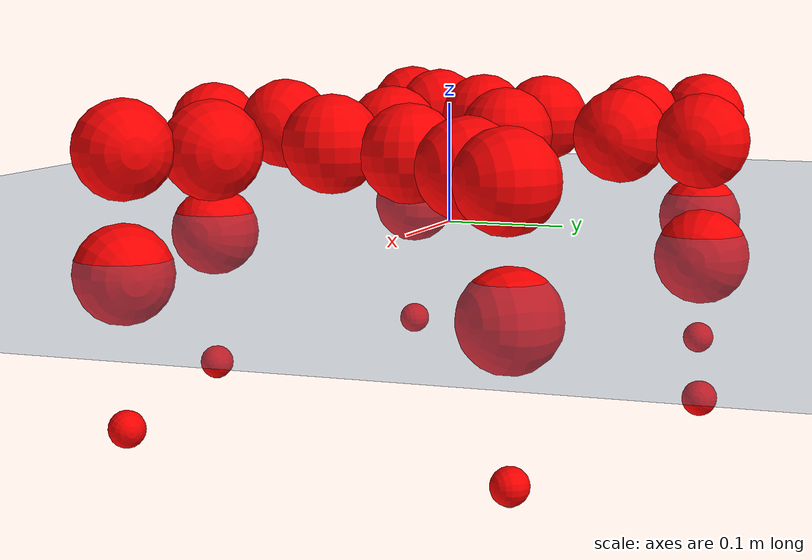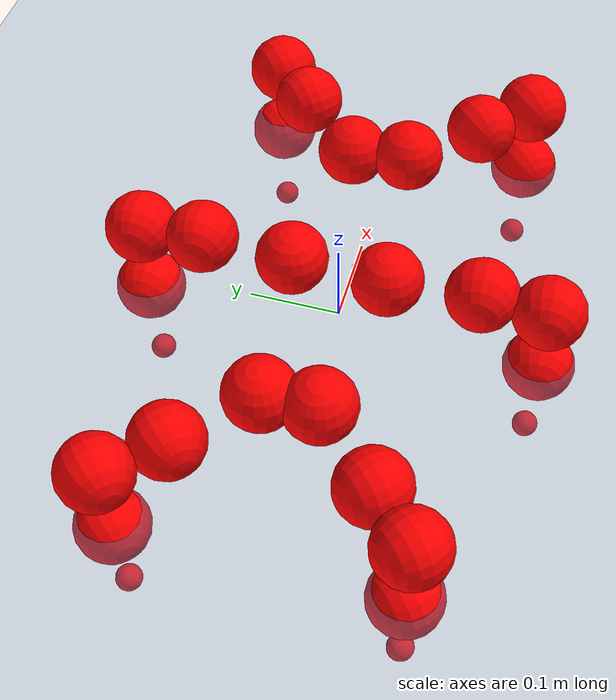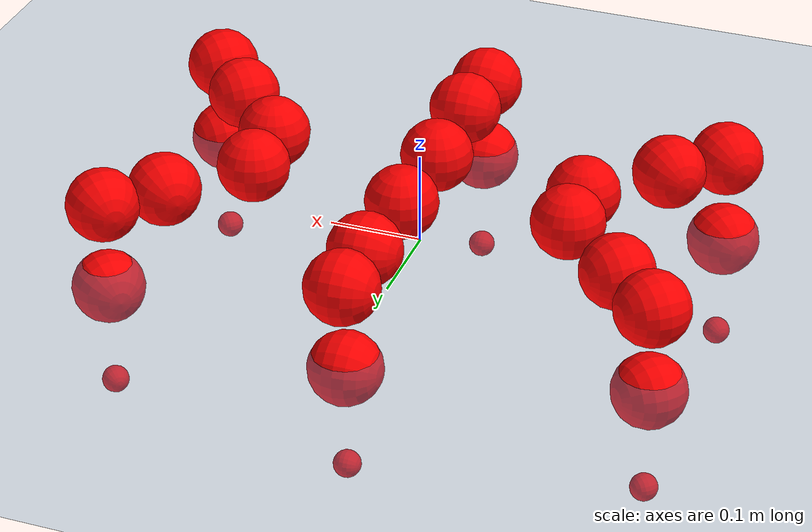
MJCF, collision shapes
<mujoco model="Golem">
  <compiler angle="radian" assetdir="assets" balanceinertia="true" inertiafromgeom="false"/>

  <option timestep="0.005" density="1.2" viscosity="2e-05"/>

  <size nkey="1"/>

  <visual>
    <quality shadowsize="8192"/>
    <map shadowclip="0.5"/>
  </visual>

  <default>
    <default class="/">
      <joint armature="0.01" damping="0.01" frictionloss="0.01"/>
      <geom contype="0" conaffinity="0" group="1" solref="-1000 -80"/>
      <site size="0.01 0.005 0.005" group="5"/>
      <general forcelimited="true" biastype="affine" gainprm="25" biasprm="0 -25 -0.5"/>
      <default class="visual">
        <geom type="mesh" group="2"/>
      </default>
      <default class="collision">
        <geom group="3"/>
      </default>
      <default class="foot">
        <geom size="0.01 0 0" condim="6" group="4" priority="1" solimp="0.015 1 0.01"/>
      </default>
      <default class="reward_collision_sphere">
        <geom group="5" rgba="1 0 0 1"/>
      </default>
    </default>
  </default>

  <asset>
    <texture type="skybox" colorspace="auto" name="//unnamed_texture_0" builtin="gradient" rgb1="0.95 0.95 0.95" rgb2="0.95 0.95 0.95" width="100" height="600"/>
    <texture type="2d" colorspace="auto" name="texplane" builtin="checker" rgb1="0.345 0.575 0.748" rgb2="0.345 0.575 0.748" markrgb="1 1 1" width="512" height="512"/>
    <material name="MatPlane" class="/" texture="texplane" texuniform="true" texrepeat="2 2" specular="0.9"/>
    <mesh name="body" class="/" file="body.stl" scale="0.001 0.001 0.001"/>
    <mesh name="coxa" class="/" file="coxa.stl" scale="0.001 0.001 0.001"/>
    <mesh name="femur" class="/" file="femur.stl" scale="0.001 0.001 0.001"/>
    <mesh name="tibia" class="/" file="tibia.stl" scale="0.001 0.001 0.001"/>
    <mesh name="tarsus" class="/" file="tarsus.stl" scale="0.001 0.001 0.001"/>
  </asset>

  <worldbody>
    <geom name="floor" class="/" size="100 100 0.125" type="plane" group="0" material="MatPlane"/>
    <light name="toplight_shadow" class="/" pos="0 0 5" dir="0.0990148 0.0990148 -0.990148" type="directional" ambient="0.04 0.04 0.04" diffuse="0.55 0.55 0.55" specular="0.12 0.12 0.12"/>
    <light name="toplight_fill" class="/" pos="0 0 5" dir="0.0990148 0.0990148 -0.990148" type="directional" castshadow="false" ambient="0.04 0.04 0.04" diffuse="0.3 0.3 0.3" specular="0.08 0.08 0.08"/>
    <body name="trunk" pos="0.00212877 -8.36287e-05 0.00157133" quat="0.999999 0.00106854 3.19991e-05 -0.000350153">
      <inertial pos="0.00048924 -0.00011005 -0.000425532" quat="0.999923 -0.011068 0.0031877 0.00466008" mass="3.36409" diaginertia="0.0155854 0.00105417 0.0221469"/>
      <joint name="//unnamed_joint_0" type="free"/>
      <geom name="//unnamed_geom_1" class="/" pos="0 0 0.0747079" quat="1 0 0 0" type="mesh" rgba="0.9 0.9 0.9 1" mesh="body"/>
      <site name="imu" class="/" pos="0.13075 7.74256e-05 0.114298" size="0.00968529"/>
      <camera name="track" class="/" pos="0 -1.28379 0" quat="0.707107 0.707107 0 0" mode="trackcom"/>
      <camera name="ego_camera" class="/" pos="0.14253 0 0.116731" quat="-0.5 -0.5 0.5 0.5"/>
      <body name="coxa_RR" pos="-0.193581 -0.0508051 0.0754608" quat="0.382553 8.38521e-05 -0.00155829 -0.923932">
        <inertial pos="0.00245794 -0.00141447 0.00117085" quat="0.999995 0.00218469 0.00178307 -0.00123452" mass="0.188637" diaginertia="0.0159569 0.00111231 0.0225421"/>
        <joint name="coxa_joint_RR" class="/" pos="0 0 0" axis="0.000594039 0.00160106 -0.999999" range="-3.18436 3.18273" armature="0.00851272" damping="0.00845726" frictionloss="0.00937023"/>
        <geom name="//unnamed_geom_2" class="/" type="mesh" rgba="0.2 0.2 0.2 1" mesh="coxa"/>
        <geom name="//unnamed_geom_3" class="reward_collision_sphere" size="0.0387412" pos="-0.0328915 0 0"/>
        <body name="femur_RR" pos="0.0675502 -0.000543532 0.000205036" quat="0.500031 -0.500195 0.499885 0.499889">
          <inertial pos="-0.000702445 -0.00250843 -0.00148455" quat="1 0.000406937 -0.000490711 -0.000423281" mass="0.18237" diaginertia="0.0157098 0.00108901 0.0222427"/>
          <joint name="femur_joint_RR" class="/" pos="0 0 0" axis="-0.000308516 0.00314653 -0.999995" range="-3.08618 3.15737" armature="0.00871004" damping="0.0124992" frictionloss="0.00838061"/>
          <geom name="//unnamed_geom_4" class="/" type="mesh" rgba="0.9 0.9 0.9 1" mesh="femur"/>
          <geom name="//unnamed_geom_5" class="reward_collision_sphere" size="0.0387412"/>
          <body name="tibia_RR" pos="0.000456829 -0.0681159 -0.00134199" quat="-5.01931e-05 1 1.16419e-06 -0.000172024">
            <inertial pos="-0.00237528 -0.000824241 0.0015495" quat="0.999992 -0.00262158 -0.000671953 0.00280908" mass="0.175351" diaginertia="0.0155003 0.00105267 0.0216908"/>
            <joint name="tibia_joint_RR" class="/" pos="0 0 0" axis="-0.0024025 0.00139705 0.999996" range="-3.1421 3.12496" armature="0.00994036" damping="0.0189041" frictionloss="0.0104329"/>
            <geom name="//unnamed_geom_6" class="/" type="mesh" rgba="0.2 0.2 0.2 1" mesh="tibia"/>
            <geom name="//unnamed_geom_7" class="reward_collision_sphere" size="0.0387412"/>
            <body name="tarsus_RR" pos="0.0981713 0.00126408 0.00251947" quat="1 0.000414062 -0.000144572 0.000366133">
              <inertial pos="0.0689119 0.00237161 0.0025632" quat="0.506756 0.504827 0.494386 0.493893" mass="0.189009" diaginertia="0.0157602 0.00111112 0.0219737"/>
              <joint name="tarsus_joint_RR" class="/" pos="0 0 0" axis="-0.0014638 0.00813923 0.999966" range="-3.13303 3.1193" armature="0.00931763" damping="0.00868775" frictionloss="0.00872948"/>
              <geom name="//unnamed_geom_8" class="/" type="mesh" rgba="0.9 0.9 0.9 1" mesh="tarsus"/>
              <geom name="foot_1" class="foot" size="0.00906014" pos="0.122795 0 0" quat="0 -0.707107 0 0.707107"/>
              <geom name="//unnamed_geom_10" class="reward_collision_sphere" size="0.0387412"/>
              <geom name="//unnamed_geom_11" class="reward_collision_sphere" size="0.0145279" pos="0.117861 0 0"/>
              <site name="foot_1" class="foot" pos="0.122795 0 0" quat="0 -0.707107 0 0.707107" size="0.00968529"/>
            </body>
          </body>
        </body>
      </body>
      <body name="coxa_RM" pos="-0.0024446 -0.0842453 0.0737726" quat="0.707012 0.000112293 0.000214438 -0.707202">
        <inertial pos="-0.000551941 -0.0014797 0.00319714" quat="0.99991 -0.0051913 0.00628701 0.0106675" mass="0.182605" diaginertia="0.0156658 0.00109418 0.0222292"/>
        <joint name="coxa_joint_RM" class="/" pos="0 0 0" axis="0.000970345 0.000719546 -0.999999" range="-3.13115 3.10193" armature="0.00864169" damping="0.015254" frictionloss="0.0103594"/>
        <geom name="//unnamed_geom_12" class="/" type="mesh" rgba="0.2 0.2 0.2 1" mesh="coxa"/>
        <geom name="//unnamed_geom_13" class="reward_collision_sphere" size="0.0387412" pos="-0.0328915 0 0"/>
        <body name="femur_RM" pos="0.065692 0.00246505 0.00443652" quat="0.500812 -0.499261 0.499222 0.500703">
          <inertial pos="-0.00240959 -0.00141545 -0.000543341" quat="0.999954 -0.000336828 0.00305544 0.00908176" mass="0.186786" diaginertia="0.0155682 0.0010522 0.0215709"/>
          <joint name="femur_joint_RM" class="/" pos="0 0 0" axis="-0.00920351 -0.0100061 -0.999908" range="-3.13343 3.13183" armature="0.00853693" damping="0.0069555" frictionloss="0.00974639"/>
          <geom name="//unnamed_geom_14" class="/" type="mesh" rgba="0.9 0.9 0.9 1" mesh="femur"/>
          <geom name="//unnamed_geom_15" class="reward_collision_sphere" size="0.0387412"/>
          <body name="tibia_RM" pos="0.00426746 -0.0694822 -0.00104968" quat="-3.69682e-05 1 0.000386889 -4.1336e-05">
            <inertial pos="-0.00259 2.45969e-05 0.00121966" quat="1 0.000658222 5.62704e-05 7.37341e-05" mass="0.185354" diaginertia="0.0164352 0.00109179 0.0214507"/>
            <joint name="tibia_joint_RM" class="/" pos="0 0 0" axis="-0.000773135 -0.0106956 0.999943" range="-3.13752 3.14756" armature="0.00974135" damping="0" frictionloss="0.00839078"/>
            <geom name="//unnamed_geom_16" class="/" type="mesh" rgba="0.2 0.2 0.2 1" mesh="tibia"/>
            <geom name="//unnamed_geom_17" class="reward_collision_sphere" size="0.0387412"/>
            <body name="tarsus_RM" pos="0.0927571 0.000554605 -0.00220663" quat="0.999999 -0.000316809 0.000942016 0.00078553">
              <inertial pos="0.0631362 5.44693e-05 -0.00221265" quat="0.498916 0.50214 0.500207 0.498729" mass="0.181552" diaginertia="0.0153178 0.00108758 0.0209385"/>
              <joint name="tarsus_joint_RM" class="/" pos="0 0 0" axis="-0.00317548 -0.00830269 0.99996" stiffness="0.0129839" range="-3.1269 3.07074" armature="0.00951721" damping="0.018872" frictionloss="0.00860799"/>
              <geom name="//unnamed_geom_18" class="/" type="mesh" rgba="0.9 0.9 0.9 1" mesh="tarsus"/>
              <geom name="foot_2" class="foot" size="0.0100171" pos="0.122795 0 0" quat="0 -0.707107 0 0.707107"/>
              <geom name="//unnamed_geom_20" class="reward_collision_sphere" size="0.0387412"/>
              <geom name="//unnamed_geom_21" class="reward_collision_sphere" size="0.0145279" pos="0.117861 0 0"/>
              <site name="foot_2" class="foot" pos="0.122795 0 0" quat="0 -0.707107 0 0.707107" size="0.00968529"/>
            </body>
          </body>
        </body>
      </body>
      <body name="coxa_RF" pos="0.197084 -0.0547131 0.077946" quat="0.923715 0.00017937 0.000359568 -0.38308">
        <inertial pos="-0.00134041 0.00102171 -0.00225593" quat="0.999923 -0.0119125 0.00257533 -0.00245481" mass="0.176049" diaginertia="0.0155818 0.00106949 0.0215652"/>
        <joint name="coxa_joint_RF" class="/" pos="0 0 0" axis="-8.93258e-05 -0.00498064 -0.999988" range="-3.13045 3.09758" armature="0.0100574" damping="0.00151048" frictionloss="0.00844472"/>
        <geom name="//unnamed_geom_22" class="/" type="mesh" rgba="0.2 0.2 0.2 1" mesh="coxa"/>
        <geom name="//unnamed_geom_23" class="reward_collision_sphere" size="0.0387412" pos="-0.0328915 0 0"/>
        <body name="femur_RF" pos="0.0624746 -0.00367821 -0.00105205" quat="0.500756 -0.500093 0.49855 0.500598">
          <inertial pos="0.0017789 -0.0011962 -0.00236176" quat="0.999962 0.00708634 0.00462178 0.00214763" mass="0.175891" diaginertia="0.0153731 0.00107822 0.0209332"/>
          <joint name="femur_joint_RF" class="/" pos="0 0 0" axis="0.00910604 -0.00989105 -0.99991" stiffness="0.0013535" range="-3.09707 3.17543" armature="0.00896753" damping="0.0138601" frictionloss="0.00986286"/>
          <geom name="//unnamed_geom_24" class="/" type="mesh" rgba="0.9 0.9 0.9 1" mesh="femur"/>
          <geom name="//unnamed_geom_25" class="reward_collision_sphere" size="0.0387412"/>
          <body name="tibia_RF" pos="-0.00261106 -0.0680162 -0.00258557" quat="0.000253067 0.999999 -0.0010279 0.000256967">
            <inertial pos="-0.000778516 -5.22848e-06 -0.000826368" quat="0.999923 -0.0023496 0.00256461 0.0119309" mass="0.194264" diaginertia="0.0165689 0.00113423 0.0220888"/>
            <joint name="tibia_joint_RF" class="/" pos="0 0 0" axis="-0.00132369 0.00076551 0.999999" stiffness="0.0199702" range="-3.13044 3.14467" armature="0.00986532" damping="0.0325057" frictionloss="0.00970961"/>
            <geom name="//unnamed_geom_26" class="/" type="mesh" rgba="0.2 0.2 0.2 1" mesh="tibia"/>
            <geom name="//unnamed_geom_27" class="reward_collision_sphere" size="0.0387412"/>
            <body name="tarsus_RF" pos="0.0932248 0.00107629 0.00103723" quat="1 0.000383503 -7.19397e-05 -0.00020654">
              <inertial pos="0.0676951 0.000134816 0.00242104" quat="0.499998 0.50053 0.499493 0.499979" mass="0.17722" diaginertia="0.0163922 0.00107737 0.0216815"/>
              <joint name="tarsus_joint_RF" class="/" pos="0 0 0" axis="-0.0115443 -0.00743621 0.999906" range="-3.12444 3.09048" armature="0.0107475" damping="0" frictionloss="0.00886289"/>
              <geom name="//unnamed_geom_28" class="/" type="mesh" rgba="0.9 0.9 0.9 1" mesh="tarsus"/>
              <geom name="foot_3" class="foot" size="0.00972003" pos="0.122795 0 0" quat="0 -0.707107 0 0.707107"/>
              <geom name="//unnamed_geom_30" class="reward_collision_sphere" size="0.0387412"/>
              <geom name="//unnamed_geom_31" class="reward_collision_sphere" size="0.0145279" pos="0.117861 0 0"/>
              <site name="foot_3" class="foot" pos="0.122795 0 0" quat="0 -0.707107 0 0.707107" size="0.00968529"/>
            </body>
          </body>
        </body>
      </body>
      <body name="coxa_LR" pos="-0.195309 0.0543502 0.0750764" quat="0.382687 -6.083e-06 -5.67203e-05 0.923878">
        <inertial pos="0.000833711 -0.00288165 -0.000283624" quat="0.999992 0.00195281 0.000871701 -0.00340936" mass="0.181466" diaginertia="0.0163017 0.00112485 0.0219052"/>
        <joint name="coxa_joint_LR" class="/" pos="0 0 0" axis="-0.000266685 0.000955885 -1" stiffness="0.00465804" range="-3.12286 3.10191" armature="0.0109798" damping="0.00732124" frictionloss="0.00982517"/>
        <geom name="//unnamed_geom_32" class="/" type="mesh" rgba="0.2 0.2 0.2 1" mesh="coxa"/>
        <geom name="//unnamed_geom_33" class="reward_collision_sphere" size="0.0387412" pos="-0.0328915 0 0"/>
        <body name="femur_LR" pos="0.0656857 0.00222819 -0.00263961" quat="0.50005 -0.500248 0.500011 0.499692">
          <inertial pos="-0.000491078 -0.00234352 0.00248006" quat="0.999947 0.003165 -0.00841226 -0.00498606" mass="0.189016" diaginertia="0.0161164 0.00110707 0.0222208"/>
          <joint name="femur_joint_LR" class="/" pos="0 0 0" axis="-0.010306 -0.00896129 0.999907" stiffness="0.00237872" range="-3.15443 3.14202" armature="0.0103878" damping="0.00640081" frictionloss="0.00890807"/>
          <geom name="//unnamed_geom_34" class="/" type="mesh" rgba="0.9 0.9 0.9 1" mesh="femur"/>
          <geom name="//unnamed_geom_35" class="reward_collision_sphere" size="0.0387412"/>
          <body name="tibia_LR" pos="7.79051e-06 -0.0715408 -0.00104167" quat="-7.48962e-05 1 -0.0002513 -0.000283503">
            <inertial pos="-0.00123634 -0.000771898 6.6619e-05" quat="0.999923 -0.00961353 -0.00277749 0.00732849" mass="0.186684" diaginertia="0.016465 0.00112598 0.0220021"/>
            <joint name="tibia_joint_LR" class="/" pos="0 0 0" axis="-0.0166246 0.00379175 -0.999855" range="-3.14266 3.20862" armature="0.00826055" damping="0.0311594" frictionloss="0.0101889"/>
            <geom name="//unnamed_geom_36" class="/" type="mesh" rgba="0.2 0.2 0.2 1" mesh="tibia"/>
            <geom name="//unnamed_geom_37" class="reward_collision_sphere" size="0.0387412"/>
            <body name="tarsus_LR" pos="0.0978073 -0.00111183 -0.00257505" quat="0.999999 0.000797386 0.000493977 0.000884487">
              <inertial pos="0.0632831 -0.00154377 0.00360059" quat="0.499552 0.499965 0.500419 0.500065" mass="0.184181" diaginertia="0.0161392 0.00106553 0.0223254"/>
              <joint name="tarsus_joint_LR" class="/" pos="0 0 0" axis="0.00579598 0.00167505 -0.999982" range="-3.10984 3.1029" armature="0.00939052" damping="0.00415252" frictionloss="0.00975963"/>
              <geom name="//unnamed_geom_38" class="/" type="mesh" rgba="0.9 0.9 0.9 1" mesh="tarsus"/>
              <geom name="foot_4" class="foot" size="0.0098234" pos="0.122795 0 0" quat="0.707107 0 -0.707107 0"/>
              <geom name="//unnamed_geom_40" class="reward_collision_sphere" size="0.0387412"/>
              <geom name="//unnamed_geom_41" class="reward_collision_sphere" size="0.0145279" pos="0.117861 0 0"/>
              <site name="foot_4" class="foot" pos="0.122795 0 0" quat="0.707107 0 -0.707107 0" size="0.00968529"/>
            </body>
          </body>
        </body>
      </body>
      <body name="coxa_LM" pos="-0.000814719 0.08409 0.0744251" quat="0.707907 -0.000803011 -0.000148834 0.706305">
        <inertial pos="9.5549e-05 0.00131879 -0.00296059" quat="0.999938 0.00345612 0.00980577 0.00393741" mass="0.179615" diaginertia="0.0148478 0.00105389 0.0209838"/>
        <joint name="coxa_joint_LM" class="/" pos="0 0 0" axis="0.00124544 -0.0011345 -0.999999" range="-3.14566 3.08635" armature="0.0108352" damping="0.0152152" frictionloss="0.00987315"/>
        <geom name="//unnamed_geom_42" class="/" type="mesh" rgba="0.2 0.2 0.2 1" mesh="coxa"/>
        <geom name="//unnamed_geom_43" class="reward_collision_sphere" size="0.0387412" pos="-0.0328915 0 0"/>
        <body name="femur_LM" pos="0.0662763 -0.00180119 0.00126461" quat="0.500098 -0.500091 0.499812 0.499999">
          <inertial pos="0.00245449 0.00150813 -0.00135259" quat="0.999999 0.000524963 0.000836851 0.000420265" mass="0.191144" diaginertia="0.0156241 0.00113767 0.0228309"/>
          <joint name="femur_joint_LM" class="/" pos="0 0 0" axis="0.00643146 0.0024892 0.999976" range="-3.14178 3.13533" armature="0.00876814" damping="0" frictionloss="0.00975287"/>
          <geom name="//unnamed_geom_44" class="/" type="mesh" rgba="0.9 0.9 0.9 1" mesh="femur"/>
          <geom name="//unnamed_geom_45" class="reward_collision_sphere" size="0.0387412"/>
          <body name="tibia_LM" pos="0.00267109 -0.0679158 0.00212308" quat="-0.00107345 0.999999 0.000794681 0.000214545">
            <inertial pos="0.00263948 -0.000336686 0.000631612" quat="1 -0.000604191 -2.56487e-05 0.000159957" mass="0.183296" diaginertia="0.0160171 0.00105616 0.0213904"/>
            <joint name="tibia_joint_LM" class="/" pos="0 0 0" axis="0.0123139 0.00776022 -0.999894" stiffness="0.00206113" range="-3.11322 3.11998" armature="0.0109422" damping="0" frictionloss="0.0108509"/>
            <geom name="//unnamed_geom_46" class="/" type="mesh" rgba="0.2 0.2 0.2 1" mesh="tibia"/>
            <geom name="//unnamed_geom_47" class="reward_collision_sphere" size="0.0387412"/>
            <body name="tarsus_LM" pos="0.0943779 0.000481328 -0.00249419" quat="1 2.43512e-05 -1.68882e-05 -5.16488e-05">
              <inertial pos="0.0639288 -0.00241044 -0.00262481" quat="0.500831 0.499456 0.499968 0.499744" mass="0.182818" diaginertia="0.0155871 0.0010747 0.0217639"/>
              <joint name="tarsus_joint_LM" class="/" pos="0 0 0" axis="-0.00295511 -0.00732585 -0.999969" stiffness="0.00707523" range="-3.14522 3.14591" armature="0.00929056" damping="0.0200728" frictionloss="0.00840654"/>
              <geom name="//unnamed_geom_48" class="/" type="mesh" rgba="0.9 0.9 0.9 1" mesh="tarsus"/>
              <geom name="foot_5" class="foot" size="0.00959052" pos="0.122795 0 0" quat="0.707107 0 -0.707107 0"/>
              <geom name="//unnamed_geom_50" class="reward_collision_sphere" size="0.0387412"/>
              <geom name="//unnamed_geom_51" class="reward_collision_sphere" size="0.0145279" pos="0.117861 0 0"/>
              <site name="foot_5" class="foot" pos="0.122795 0 0" quat="0.707107 0 -0.707107 0" size="0.00968529"/>
            </body>
          </body>
        </body>
      </body>
      <body name="coxa_LF" pos="0.194451 0.0548912 0.0722123" quat="0.9236 0.000853849 0.000639477 0.383355">
        <inertial pos="0.00036619 9.48094e-06 0.00275003" quat="0.999965 0.0031167 0.00661754 -0.00397637" mass="0.181364" diaginertia="0.0151985 0.00112529 0.0216754"/>
        <joint name="coxa_joint_LF" class="/" pos="0 0 0" axis="-0.00546272 -0.00449462 -0.999975" range="-3.10549 3.15753" armature="0.0088103" damping="0.00117034" frictionloss="0.00939629"/>
        <geom name="//unnamed_geom_52" class="/" type="mesh" rgba="0.2 0.2 0.2 1" mesh="coxa"/>
        <geom name="//unnamed_geom_53" class="reward_collision_sphere" size="0.0387412" pos="-0.0328915 0 0"/>
        <body name="femur_LF" pos="0.066908 0.00149305 -0.00269154" quat="0.500678 -0.500126 0.500075 0.49912">
          <inertial pos="0.000275314 0.000699929 0.00102814" quat="0.99992 0.00648973 0.0102061 -0.0037818" mass="0.176075" diaginertia="0.0159373 0.00109971 0.0216764"/>
          <joint name="femur_joint_LF" class="/" pos="0 0 0" axis="0.00451361 0.0055032 0.999975" stiffness="0.00109811" range="-3.11693 3.14563" armature="0.00968544" damping="0.00765075" frictionloss="0.00967976"/>
          <geom name="//unnamed_geom_54" class="/" type="mesh" rgba="0.9 0.9 0.9 1" mesh="femur"/>
          <geom name="//unnamed_geom_55" class="reward_collision_sphere" size="0.0387412"/>
          <body name="tibia_LF" pos="0.00273859 -0.0665923 -0.00141267" quat="0.000204845 1 -0.00018906 -0.000182573">
            <inertial pos="0.000157233 7.5383e-05 -0.00149479" quat="0.999859 0.00648968 0.00773436 -0.0134469" mass="0.176949" diaginertia="0.015632 0.00110864 0.0209623"/>
            <joint name="tibia_joint_LF" class="/" pos="0 0 0" axis="0.00868018 0.0062579 -0.999943" stiffness="0.019331" range="-3.13219 3.18635" armature="0.00934307" damping="0.0189425" frictionloss="0.00870212"/>
            <geom name="//unnamed_geom_56" class="/" type="mesh" rgba="0.2 0.2 0.2 1" mesh="tibia"/>
            <geom name="//unnamed_geom_57" class="reward_collision_sphere" size="0.0387412"/>
            <body name="tarsus_LF" pos="0.0976507 0.000445647 -0.00195881" quat="1 0.000629903 0.000239751 -0.000200481">
              <inertial pos="0.0642619 -0.00309946 -0.00128074" quat="0.508794 0.501074 0.499066 0.490904" mass="0.188421" diaginertia="0.0164443 0.001122 0.0221899"/>
              <joint name="tarsus_joint_LF" class="/" pos="0 0 0" axis="-0.0120913 -0.00693083 -0.999903" stiffness="0.00128543" range="-3.19191 3.18021" armature="0.00860922" damping="0" frictionloss="0.00946305"/>
              <geom name="//unnamed_geom_58" class="/" type="mesh" rgba="0.9 0.9 0.9 1" mesh="tarsus"/>
              <geom name="foot_6" class="foot" size="0.0100392" pos="0.122795 0 0" quat="0.707107 0 -0.707107 0"/>
              <geom name="//unnamed_geom_60" class="reward_collision_sphere" size="0.0387412"/>
              <geom name="//unnamed_geom_61" class="reward_collision_sphere" size="0.0145279" pos="0.117861 0 0"/>
              <site name="foot_6" class="foot" pos="0.122795 0 0" quat="0.707107 0 -0.707107 0" size="0.00968529"/>
            </body>
          </body>
        </body>
      </body>
    </body>
  </worldbody>

  <contact>
    <pair class="/" geom1="floor" geom2="foot_1" name="//unnamed_contact_0"/>
    <pair class="/" geom1="floor" geom2="foot_2" name="//unnamed_contact_1"/>
    <pair class="/" geom1="floor" geom2="foot_3" name="//unnamed_contact_2"/>
    <pair class="/" geom1="floor" geom2="foot_4" name="//unnamed_contact_3"/>
    <pair class="/" geom1="floor" geom2="foot_5" name="//unnamed_contact_4"/>
    <pair class="/" geom1="floor" geom2="foot_6" name="//unnamed_contact_5"/>
  </contact>

  <actuator>
    <general name="coxa_joint_RR" class="/" joint="coxa_joint_RR" forcerange="-6.95516 6.95516" gainprm="23.3904" biasprm="0 -23.3904 -0.470524"/>
    <general name="femur_joint_RR" class="/" joint="femur_joint_RR" forcerange="-7.43952 7.43952" gainprm="23.3904" biasprm="0 -23.3904 -0.470524"/>
    <general name="tibia_joint_RR" class="/" joint="tibia_joint_RR" forcerange="-7.25449 7.25449" gainprm="23.3904" biasprm="0 -23.3904 -0.470524"/>
    <general name="tarsus_joint_RR" class="/" joint="tarsus_joint_RR" forcerange="-7.7557 7.7557" gainprm="23.3904" biasprm="0 -23.3904 -0.470524"/>
    <general name="coxa_joint_RM" class="/" joint="coxa_joint_RM" forcerange="-6.15158 6.15158" gainprm="23.3904" biasprm="0 -23.3904 -0.470524"/>
    <general name="femur_joint_RM" class="/" joint="femur_joint_RM" forcerange="-7.03595 7.03595" gainprm="23.3904" biasprm="0 -23.3904 -0.470524"/>
    <general name="tibia_joint_RM" class="/" joint="tibia_joint_RM" forcerange="-7.73847 7.73847" gainprm="23.3904" biasprm="0 -23.3904 -0.470524"/>
    <general name="tarsus_joint_RM" class="/" joint="tarsus_joint_RM" forcerange="-7.26767 7.26767" gainprm="23.3904" biasprm="0 -23.3904 -0.470524"/>
    <general name="coxa_joint_RF" class="/" joint="coxa_joint_RF" forcerange="-7.02701 7.02701" gainprm="23.3904" biasprm="0 -23.3904 -0.470524"/>
    <general name="femur_joint_RF" class="/" joint="femur_joint_RF" forcerange="-7.08527 7.08527" gainprm="23.3904" biasprm="0 -23.3904 -0.470524"/>
    <general name="tibia_joint_RF" class="/" joint="tibia_joint_RF" forcerange="-7.26796 7.26796" gainprm="23.3904" biasprm="0 -23.3904 -0.470524"/>
    <general name="tarsus_joint_RF" class="/" joint="tarsus_joint_RF" forcerange="-7.11965 7.11965" gainprm="23.3904" biasprm="0 -23.3904 -0.470524"/>
    <general name="coxa_joint_LR" class="/" joint="coxa_joint_LR" forcerange="-6.66142 6.66142" gainprm="23.3904" biasprm="0 -23.3904 -0.470524"/>
    <general name="femur_joint_LR" class="/" joint="femur_joint_LR" forcerange="-7.12147 7.12147" gainprm="23.3904" biasprm="0 -23.3904 -0.470524"/>
    <general name="tibia_joint_LR" class="/" joint="tibia_joint_LR" forcerange="-7.21877 7.21877" gainprm="23.3904" biasprm="0 -23.3904 -0.470524"/>
    <general name="tarsus_joint_LR" class="/" joint="tarsus_joint_LR" forcerange="-6.51775 6.51775" gainprm="23.3904" biasprm="0 -23.3904 -0.470524"/>
    <general name="coxa_joint_LM" class="/" joint="coxa_joint_LM" forcerange="-7.20325 7.20325" gainprm="23.3904" biasprm="0 -23.3904 -0.470524"/>
    <general name="femur_joint_LM" class="/" joint="femur_joint_LM" forcerange="-7.78409 7.78409" gainprm="23.3904" biasprm="0 -23.3904 -0.470524"/>
    <general name="tibia_joint_LM" class="/" joint="tibia_joint_LM" forcerange="-6.74818 6.74818" gainprm="23.3904" biasprm="0 -23.3904 -0.470524"/>
    <general name="tarsus_joint_LM" class="/" joint="tarsus_joint_LM" forcerange="-6.23456 6.23456" gainprm="23.3904" biasprm="0 -23.3904 -0.470524"/>
    <general name="coxa_joint_LF" class="/" joint="coxa_joint_LF" forcerange="-6.88082 6.88082" gainprm="23.3904" biasprm="0 -23.3904 -0.470524"/>
    <general name="femur_joint_LF" class="/" joint="femur_joint_LF" forcerange="-6.83065 6.83065" gainprm="23.3904" biasprm="0 -23.3904 -0.470524"/>
    <general name="tibia_joint_LF" class="/" joint="tibia_joint_LF" forcerange="-6.35702 6.35702" gainprm="23.3904" biasprm="0 -23.3904 -0.470524"/>
    <general name="tarsus_joint_LF" class="/" joint="tarsus_joint_LF" forcerange="-6.4655 6.4655" gainprm="23.3904" biasprm="0 -23.3904 -0.470524"/>
  </actuator>

  <sensor>
    <gyro site="imu" name="imu_angular_velocity"/>
    <velocimeter site="imu" name="imu_linear_velocity"/>
    <framelinvel objtype="site" objname="foot_1" name="foot_1_global_linear_velocity"/>
    <framelinvel objtype="site" objname="foot_2" name="foot_2_global_linear_velocity"/>
    <framelinvel objtype="site" objname="foot_3" name="foot_3_global_linear_velocity"/>
    <framelinvel objtype="site" objname="foot_4" name="foot_4_global_linear_velocity"/>
    <framelinvel objtype="site" objname="foot_5" name="foot_5_global_linear_velocity"/>
    <framelinvel objtype="site" objname="foot_6" name="foot_6_global_linear_velocity"/>
  </sensor>

  <keyframe>
    <key name="home" qpos="0 0 0.1457 1 0 0 0 0 0 0 0 0 0 0 0 0 0 0 0 0 0 0 0 0 0 0 0 0 0 0 0"/>
  </keyframe>
</mujoco>
